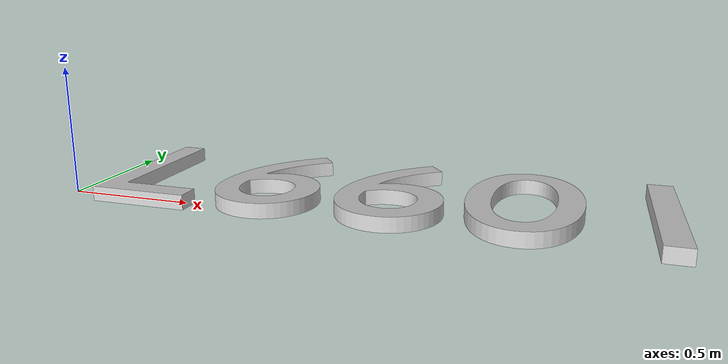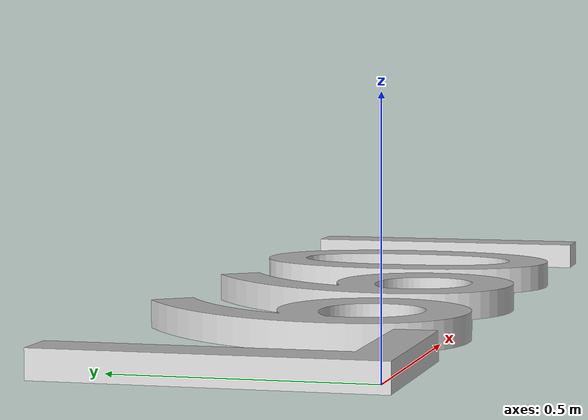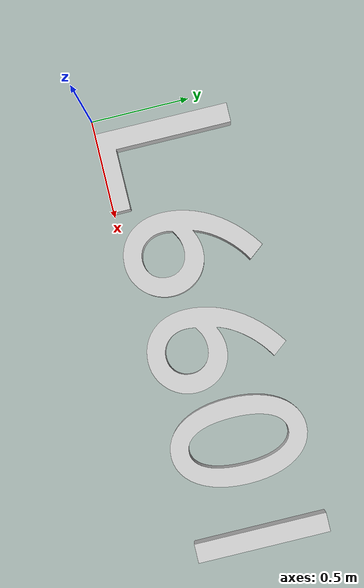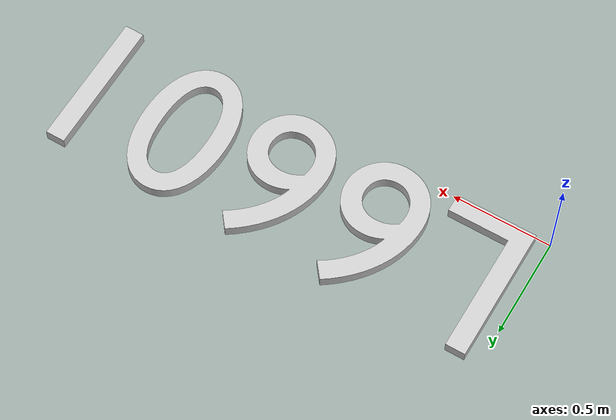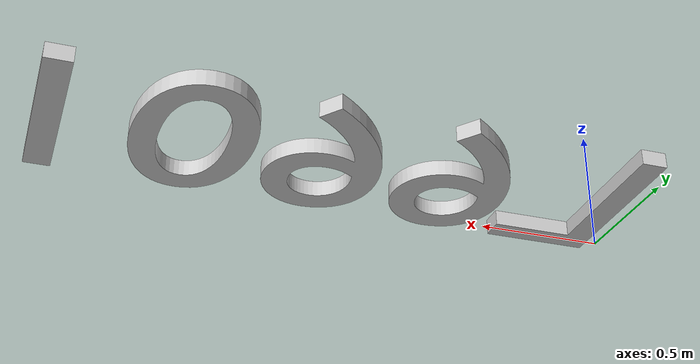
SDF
<?xml version='1.0'?>
    <sdf version='1.6'>
      <model name='L6601'>
        <link name='link'>
          <visual name='visual'>
            <geometry>
              <mesh>
                <uri>model://localros/text_3d_models/L6601/L6601.dae</uri>
              </mesh>
            </geometry>
          </visual>
        </link>
      </model>
    </sdf>
